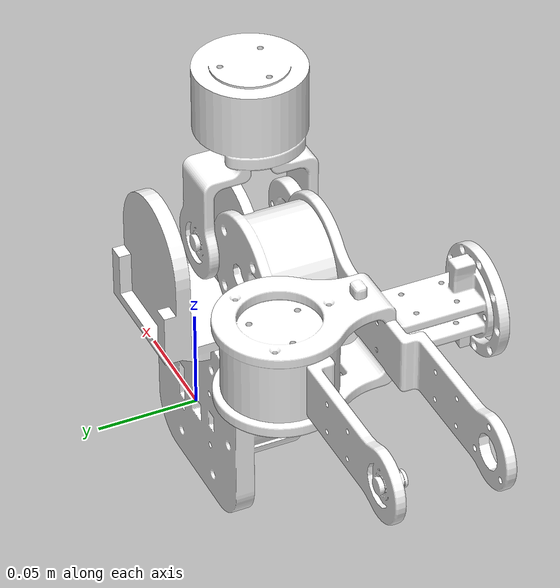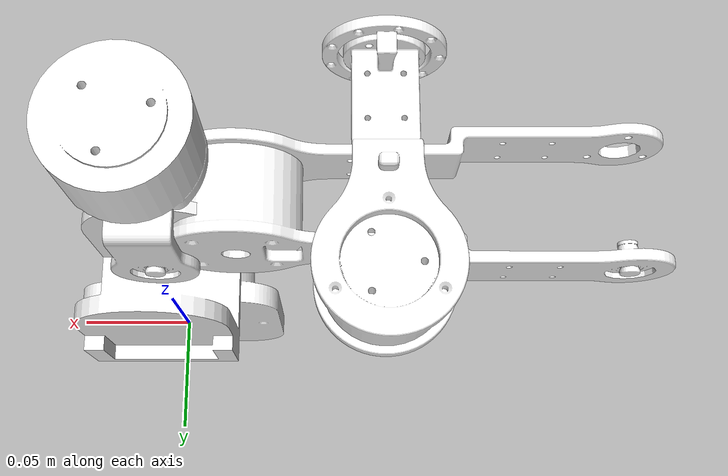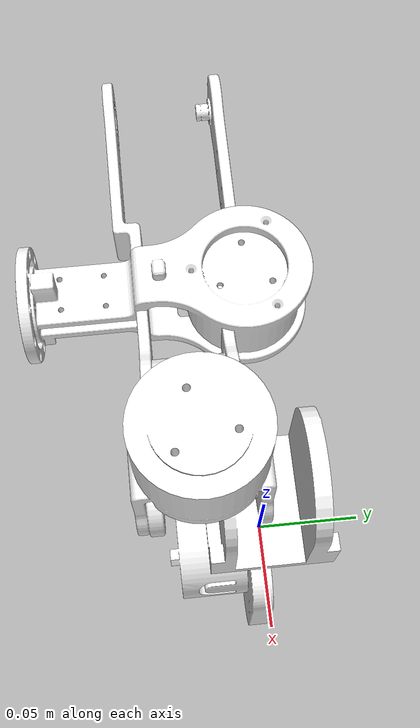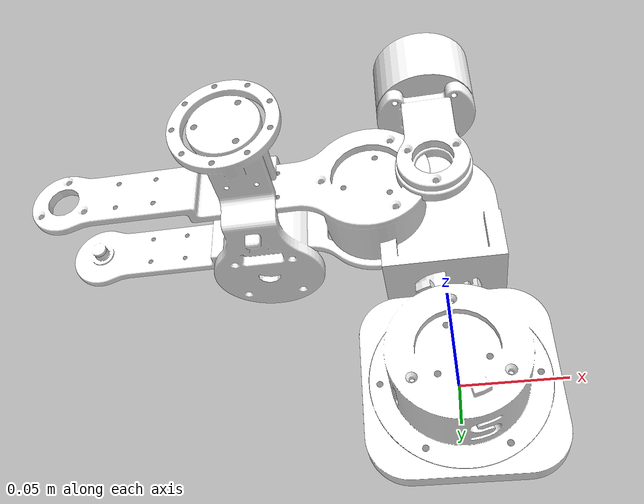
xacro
<?xml version="1.0"?>
<robot name="tandem_mani" xmlns:xacro="http://www.ros.org/wiki/xacro">

  <!-- Import all Gazebo-customization elements, including Gazebo colors -->
  <xacro:include filename="$(find tandem_mani)/urdf/tandem.gazebo" />
  <!-- Import Rviz colors -->
  <xacro:include filename="$(find tandem_mani)/urdf/materials.xacro" />

<!-- world link -->
  <link name="world"/>

  <joint name="joint_fix" type="fixed">
    <origin
      xyz="-0 -0 0"
      rpy="-1.5708 0 0" />
	<parent link="world"/>
	<child link="base_link"/>
  </joint>

  <link
    name="base_link">
    <inertial>
      <origin
        xyz="-0.00012418 -0.015731 0"
        rpy="0 0 0" />
      <mass
        value="0.2" />
      <inertia
        ixx="1.0" ixy="0.0" ixz="0.0"
        iyy="1.0" iyz="0.0"
        izz="1.0"/>
    </inertial>
    <visual>
      <origin
        xyz="0 0 0"
        rpy="0 0 0" />
      <geometry>
        <mesh
          filename="package://tandem_mani/meshes/base_link.STL" />
      </geometry>
      <material
        name="">
        <color
          rgba="1 1 1 1" />
      </material>
    </visual>
    <collision>
      <origin
        xyz="0 0 0"
        rpy="0 0 0" />
      <geometry>
        <mesh
          filename="package://tandem_mani/meshes/base_link_no_collision.STL" />
      </geometry>
    </collision>
  </link>
  <link
    name="link1">
    <inertial>
      <origin
        xyz="-1.671E-05 -0.040968 -0.00054586"
        rpy="0 0 0" />
      <mass
        value="0.2" />
      <inertia
        ixx="1.0" ixy="0.0" ixz="0.0"
        iyy="1.0" iyz="0.0"
        izz="1.0"/>
    </inertial>
    <visual>
      <origin
        xyz="0 0 0"
        rpy="0 0 0" />
      <geometry>
        <mesh
          filename="package://tandem_mani/meshes/link1.STL" />
      </geometry>
      <material
        name="">
        <color
          rgba="1 1 1 1" />
      </material>
    </visual>
    <collision>
      <origin
        xyz="0 0 0"
        rpy="0 0 0" />
      <geometry>
        <mesh
          filename="package://tandem_mani/meshes/link1_no_collision.STL" />
      </geometry>
    </collision>
  </link>
  <joint
    name="joint1"
    type="revolute">
    <origin
      xyz="-0.00015771 -0.0416 0"
      rpy="0 0 0" />
    <parent
      link="base_link" />
    <child
      link="link1" />
    <axis
      xyz="0 1 0" />
    <limit
      lower="-30"
      upper="30"
      effort="100"
      velocity="100" />
  </joint>
  <link
    name="link2">
    <inertial>
      <origin
        xyz="-0.057534 3.7398E-05 0.028177"
        rpy="0 0 0" />
      <mass
        value="0.2" />
      <inertia
        ixx="1.0" ixy="0.0" ixz="0.0"
        iyy="1.0" iyz="0.0"
        izz="1.0"/>
    </inertial>
    <visual>
      <origin
        xyz="0 0 0"
        rpy="0 0 0" />
      <geometry>
        <mesh
          filename="package://tandem_mani/meshes/link2.STL" />
      </geometry>
      <material
        name="">
        <color
          rgba="1 1 1 1" />
      </material>
    </visual>
    <collision>
      <origin
        xyz="0 0 0"
        rpy="0 0 0" />
      <geometry>
        <mesh
          filename="package://tandem_mani/meshes/link2_no_collision.STL" />
      </geometry>
    </collision>
  </link>
  <joint
    name="joint2"
    type="revolute">
    <origin
      xyz="0 -0.0512 -0.029"
      rpy="0 0 0" />
    <parent
      link="link1" />
    <child
      link="link2" />
    <axis
      xyz="0 0 -1" />
    <limit
      lower="-30"
      upper="30"
      effort="100"
      velocity="100" />
  </joint>
  <link
    name="link3">
    <inertial>
      <origin
        xyz="-0.080231 -3.4126E-05 -0.00028762"
        rpy="0 0 0" />
      <mass
        value="0.2" />
      <inertia
        ixx="1.0" ixy="0.0" ixz="0.0"
        iyy="1.0" iyz="0.0"
        izz="1.0"/>
    </inertial>
    <visual>
      <origin
        xyz="0 0 0"
        rpy="0 0 0" />
      <geometry>
        <mesh
          filename="package://tandem_mani/meshes/link3.STL" />
      </geometry>
      <material
        name="">
        <color
          rgba="1 1 1 1" />
      </material>
    </visual>
    <collision>
      <origin
        xyz="0 0 0"
        rpy="0 0 0" />
      <geometry>
        <mesh
          filename="package://tandem_mani/meshes/link3_no_collision.STL" />
      </geometry>
    </collision>
  </link>
  <joint
    name="joint3"
    type="revolute">
    <origin
      xyz="-0.0923 0 0.0285"
      rpy="0 0 0" />
    <parent
      link="link2" />
    <child
      link="link3" />
    <axis
      xyz="1 0 0" />
    <limit
      lower="-30"
      upper="30"
      effort="100"
      velocity="100" />
  </joint>
  <link
    name="link4">
    <inertial>
      <origin
        xyz="-0.12453 -2.9587E-05 0.028547"
        rpy="0 0 0" />
      <mass
        value="0.2" />
      <inertia
        ixx="1.0" ixy="0.0" ixz="0.0"
        iyy="1.0" iyz="0.0"
        izz="1.0"/>
    </inertial>
    <visual>
      <origin
        xyz="0 0 0"
        rpy="0 0 0" />
      <geometry>
        <mesh
          filename="package://tandem_mani/meshes/link4.STL" />
      </geometry>
      <material
        name="">
        <color
          rgba="1 1 1 1" />
      </material>
    </visual>
    <collision>
      <origin
        xyz="0 0 0"
        rpy="0 0 0" />
      <geometry>
        <mesh
          filename="package://tandem_mani/meshes/link4_no_collision.STL" />
      </geometry>
    </collision>
  </link>
  <joint
    name="joint4"
    type="revolute">
    <origin
      xyz="-0.0965 0 -0.0287"
      rpy="0 0 0" />
    <parent
      link="link3" />
    <child
      link="link4" />
    <axis
      xyz="0 0 -1" />
    <limit
      lower="-30"
      upper="30"
      effort="100"
      velocity="100" />
  </joint>

  <transmission name="tran1">
    <type>transmission_interface/SimpleTransmission</type>
    <joint name="joint1">
      <hardwareInterface>hardware_interface/EffortJointInterface</hardwareInterface>
    </joint>
    <actuator name="motor1">
      <hardwareInterface>hardware_interface/EffortJointInterface</hardwareInterface>
      <mechanicalReduction>1</mechanicalReduction>
    </actuator>
  </transmission>

  <transmission name="tran2">
    <type>transmission_interface/SimpleTransmission</type>
    <joint name="joint2">
      <hardwareInterface>hardware_interface/EffortJointInterface</hardwareInterface>
    </joint>
    <actuator name="motor2">
      <hardwareInterface>hardware_interface/EffortJointInterface</hardwareInterface>
      <mechanicalReduction>1</mechanicalReduction>
    </actuator>
  </transmission>

  <transmission name="tran3">
    <type>transmission_interface/SimpleTransmission</type>
    <joint name="joint3">
      <hardwareInterface>hardware_interface/EffortJointInterface</hardwareInterface>
    </joint>
    <actuator name="motor3">
      <hardwareInterface>hardware_interface/EffortJointInterface</hardwareInterface>
      <mechanicalReduction>1</mechanicalReduction>
    </actuator>
  </transmission>

  <transmission name="tran4">
    <type>transmission_interface/SimpleTransmission</type>
    <joint name="joint4">
      <hardwareInterface>hardware_interface/EffortJointInterface</hardwareInterface>
    </joint>
    <actuator name="motor4">
      <hardwareInterface>hardware_interface/EffortJointInterface</hardwareInterface>
      <mechanicalReduction>1</mechanicalReduction>
    </actuator>
  </transmission>

</robot>
